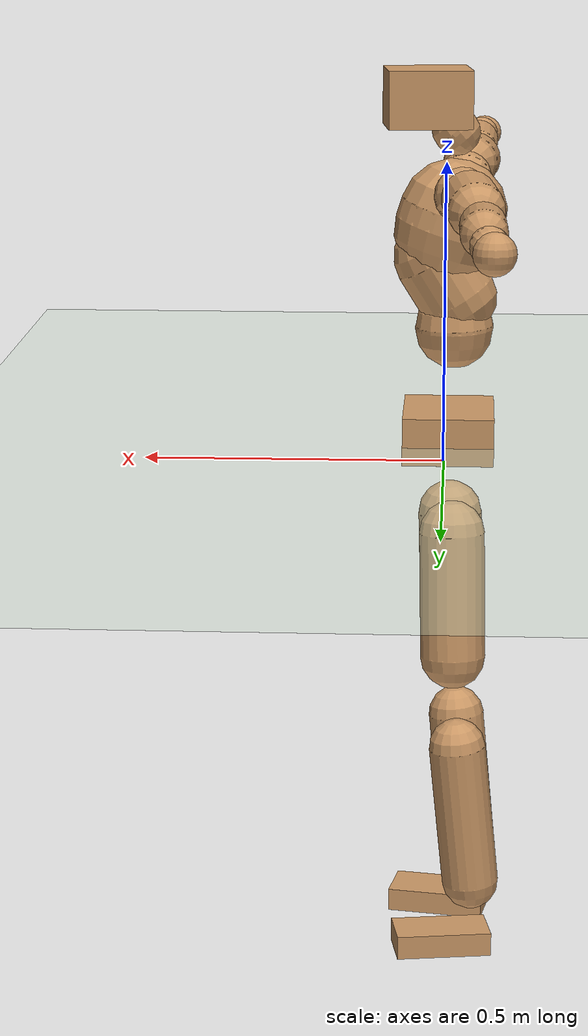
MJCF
<mujoco model="humanoid">
  <compiler coordinate="local" angle="radian"/>
  <default>
    <joint damping="0.0" armature="0.01" stiffness="0.0" limited="true"/>
    <geom conaffinity="1" condim="3" contype="7" margin="0.001" rgba="0.8 0.6 .4 1"/>
  </default>
  <asset>
    <texture type="skybox" builtin="gradient" rgb1=".4 .5 .6" rgb2="0 0 0" width="100" height="100"/>
    <texture builtin="flat" height="1278" mark="cross" markrgb="1 1 1" name="texgeom" random="0.01" rgb1="0.8 0.6 0.4" rgb2="0.8 0.6 0.4" type="cube" width="127"/>
    <texture builtin="checker" height="100" name="texplane" rgb1="0 0 0" rgb2="0.8 0.8 0.8" type="2d" width="100"/>
    <material name="MatPlane" reflectance="0.5" shininess="1" specular="1" texrepeat="60 60" texture="texplane"/>
    <material name="geom" texture="texgeom" texuniform="true"/>
  </asset>
  <worldbody>
    <light cutoff="100" diffuse="1 1 1" dir="-0 0 -1.3" directional="true" exponent="1" pos="0 0 1.3" specular=".1 .1 .1"/>
    <geom conaffinity="1" condim="3" name="floor" pos="0 0 0" rgba="0.8 0.9 0.8 1" size="100 100 .2" type="plane" material="MatPlane"/>
    <body name="Pelvis" pos="-0.0011 -0.2003 0.0205">
      <freejoint name="Pelvis"/>
      <geom type="box" contype="1" conaffinity="1" density="5359.3755" pos="-0.0063 0.0000 -0.0132" size="0.0785 0.0994 0.0409" quat="1.0000 0.0000 0.0000 -0.0017" name="Pelvis"/>
      <body name="L_Hip" pos="-0.0132 0.0644 -0.0924">
        <joint name="L_Hip_x" type="hinge" pos="0 0 0" axis="1 0 0" stiffness="1600" damping="160" armature="0.02" range="-180.0000 180.0000"/>
        <joint name="L_Hip_y" type="hinge" pos="0 0 0" axis="0 1 0" stiffness="1600" damping="160" armature="0.02" range="-180.0000 180.0000"/>
        <joint name="L_Hip_z" type="hinge" pos="0 0 0" axis="0 0 1" stiffness="1600" damping="160" armature="0.02" range="-180.0000 180.0000"/>
        <geom type="capsule" contype="1" conaffinity="1" density="2040.816327" size="0.057" fromto="-0.0018 0.0075 -0.0866 -0.0064 0.0265 -0.3045" name="L_Hip"/>
        <body name="L_Knee" pos="-0.0083 0.034 -0.3911">
          <joint name="L_Knee_x" type="hinge" pos="0 0 0" axis="1 0 0" stiffness="1600" damping="160" armature="0.02" range="-180.0000 180.0000"/>
          <joint name="L_Knee_y" type="hinge" pos="0 0 0" axis="0 1 0" stiffness="1600" damping="160" armature="0.02" range="-180.0000 180.0000"/>
          <joint name="L_Knee_z" type="hinge" pos="0 0 0" axis="0 0 1" stiffness="1600" damping="160" armature="0.02" range="-180.0000 180.0000"/>
          <geom type="capsule" contype="1" conaffinity="1" density="1234.567901" size="0.0499" fromto="-0.0082 -0.0025 -0.0795 -0.0346 -0.0104 -0.3354" name="L_Knee"/>
          <body name="L_Ankle" pos="-0.0428 -0.0128 -0.4149">
            <joint name="L_Ankle_x" type="hinge" pos="0 0 0" axis="1 0 0" stiffness="1600" damping="160" armature="0.02" range="-180.0000 180.0000"/>
            <joint name="L_Ankle_y" type="hinge" pos="0 0 0" axis="0 1 0" stiffness="1600" damping="160" armature="0.02" range="-180.0000 180.0000"/>
            <joint name="L_Ankle_z" type="hinge" pos="0 0 0" axis="0 0 1" stiffness="1600" damping="160" armature="0.02" range="-180.0000 180.0000"/>
            <geom type="box" contype="1" conaffinity="1" density="1000.000014" pos="0.0589 0.0093 -0.0285" size="0.0842 0.0431 0.021" quat="0.9969 0.0000 0.0000 0.0785" name="L_Ankle"/>
            <body name="L_Toe" pos="0.1179 0.0187 -0.0569">
              <joint name="L_Toe_x" type="hinge" pos="0 0 0" axis="1 0 0" stiffness="1000" damping="100" armature="0.02" range="-180.0000 180.0000"/>
              <joint name="L_Toe_y" type="hinge" pos="0 0 0" axis="0 1 0" stiffness="1000" damping="100" armature="0.02" range="-180.0000 180.0000"/>
              <joint name="L_Toe_z" type="hinge" pos="0 0 0" axis="0 0 1" stiffness="1000" damping="100" armature="0.02" range="-180.0000 180.0000"/>
              <geom type="box" contype="1" conaffinity="1" density="8924751.281581" pos="0.0000 0.0000 0.0270" size="0.0009 0.0022 0.001" quat="0.9964 0.0000 0.0000 0.0853" name="L_Toe"/>
            </body>
          </body>
        </body>
      </body>
      <body name="R_Hip" pos="-0.0088 -0.0619 -0.0924">
        <joint name="R_Hip_x" type="hinge" pos="0 0 0" axis="1 0 0" stiffness="1600" damping="160" armature="0.02" range="-180.0000 180.0000"/>
        <joint name="R_Hip_y" type="hinge" pos="0 0 0" axis="0 1 0" stiffness="1600" damping="160" armature="0.02" range="-180.0000 180.0000"/>
        <joint name="R_Hip_z" type="hinge" pos="0 0 0" axis="0 0 1" stiffness="1600" damping="160" armature="0.02" range="-180.0000 180.0000"/>
        <geom type="capsule" contype="1" conaffinity="1" density="2040.816327" size="0.0562" fromto="-0.0023 -0.0085 -0.0858 -0.0085 -0.0306 -0.3099" name="R_Hip"/>
        <body name="R_Knee" pos="-0.0108 -0.0391 -0.3957">
          <joint name="R_Knee_x" type="hinge" pos="0 0 0" axis="1 0 0" stiffness="1600" damping="160" armature="0.02" range="-180.0000 180.0000"/>
          <joint name="R_Knee_y" type="hinge" pos="0 0 0" axis="0 1 0" stiffness="1600" damping="160" armature="0.02" range="-180.0000 180.0000"/>
          <joint name="R_Knee_z" type="hinge" pos="0 0 0" axis="0 0 1" stiffness="1600" damping="160" armature="0.02" range="-180.0000 180.0000"/>
          <geom type="capsule" contype="1" conaffinity="1" density="1234.567901" size="0.0501" fromto="-0.0078 0.0031 -0.0796 -0.0328 0.0130 -0.3342" name="R_Knee"/>
          <body name="R_Ankle" pos="-0.0406 0.0161 -0.4138">
            <joint name="R_Ankle_x" type="hinge" pos="0 0 0" axis="1 0 0" stiffness="1600" damping="160" armature="0.02" range="-180.0000 180.0000"/>
            <joint name="R_Ankle_y" type="hinge" pos="0 0 0" axis="0 1 0" stiffness="1600" damping="160" armature="0.02" range="-180.0000 180.0000"/>
            <joint name="R_Ankle_z" type="hinge" pos="0 0 0" axis="0 0 1" stiffness="1600" damping="160" armature="0.02" range="-180.0000 180.0000"/>
            <geom type="box" contype="1" conaffinity="1" density="1000.000053" pos="0.0605 -0.0104 -0.0240" size="0.0862 0.0454 0.0203" quat="0.9963 0.0000 0.0000 -0.0854" name="R_Ankle"/>
            <body name="R_Toe" pos="0.1209 -0.0209 -0.048">
              <joint name="R_Toe_x" type="hinge" pos="0 0 0" axis="1 0 0" stiffness="1000" damping="100" armature="0.02" range="-180.0000 180.0000"/>
              <joint name="R_Toe_y" type="hinge" pos="0 0 0" axis="0 1 0" stiffness="1000" damping="100" armature="0.02" range="-180.0000 180.0000"/>
              <joint name="R_Toe_z" type="hinge" pos="0 0 0" axis="0 0 1" stiffness="1000" damping="100" armature="0.02" range="-180.0000 180.0000"/>
              <geom type="box" contype="1" conaffinity="1" density="8325906.99632" pos="0.0000 0.0000 0.0255" size="0.0009 0.0023 0.0011" quat="0.9971 0.0000 0.0000 -0.0762" name="R_Toe"/>
            </body>
          </body>
        </body>
      </body>
      <body name="Torso" pos="-0.016 -0.0023 0.1056">
        <joint name="Torso_x" type="hinge" pos="0 0 0" axis="1 0 0" stiffness="2000" damping="200" armature="0.02" range="-180.0000 180.0000"/>
        <joint name="Torso_y" type="hinge" pos="0 0 0" axis="0 1 0" stiffness="2000" damping="200" armature="0.02" range="-180.0000 180.0000"/>
        <joint name="Torso_z" type="hinge" pos="0 0 0" axis="0 0 1" stiffness="2000" damping="200" armature="0.02" range="-180.0000 180.0000"/>
        <geom type="capsule" contype="1" conaffinity="1" density="2040.816327" size="0.0674" fromto="0.0019 0.0015 0.0673 0.0017 0.0014 0.0607" name="Torso"/>
        <body name="Spine" pos="0.0036 0.0029 0.128">
          <joint name="Spine_x" type="hinge" pos="0 0 0" axis="1 0 0" stiffness="2000" damping="200" armature="0.02" range="-180.0000 180.0000"/>
          <joint name="Spine_y" type="hinge" pos="0 0 0" axis="0 1 0" stiffness="2000" damping="200" armature="0.02" range="-180.0000 180.0000"/>
          <joint name="Spine_z" type="hinge" pos="0 0 0" axis="0 0 1" stiffness="2000" damping="200" armature="0.02" range="-180.0000 180.0000"/>
          <geom type="capsule" contype="1" conaffinity="1" density="2040.816327" size="0.0688" fromto="0.0362 0.0041 0.0584 -0.0065 -0.0007 -0.0106" name="Spine"/>
          <body name="Chest" pos="0.0296 0.0033 0.0479">
            <joint name="Chest_x" type="hinge" pos="0 0 0" axis="1 0 0" stiffness="2000" damping="200" armature="0.02" range="-180.0000 180.0000"/>
            <joint name="Chest_y" type="hinge" pos="0 0 0" axis="0 1 0" stiffness="2000" damping="200" armature="0.02" range="-180.0000 180.0000"/>
            <joint name="Chest_z" type="hinge" pos="0 0 0" axis="0 0 1" stiffness="2000" damping="200" armature="0.02" range="-180.0000 180.0000"/>
            <geom type="capsule" contype="1" conaffinity="1" density="2040.816327" size="0.0922" fromto="-0.0275 -0.0004 0.0880 -0.0174 -0.0003 0.0556" name="Chest"/>
            <body name="Neck" pos="-0.0533 -0.0007 0.2">
              <joint name="Neck_x" type="hinge" pos="0 0 0" axis="1 0 0" stiffness="1000" damping="100" armature="0.02" range="-180.0000 180.0000"/>
              <joint name="Neck_y" type="hinge" pos="0 0 0" axis="0 1 0" stiffness="1000" damping="100" armature="0.02" range="-180.0000 180.0000"/>
              <joint name="Neck_z" type="hinge" pos="0 0 0" axis="0 0 1" stiffness="1000" damping="100" armature="0.02" range="-180.0000 180.0000"/>
              <geom type="capsule" contype="1" conaffinity="1" density="1000" size="0.0397" fromto="0.0259 0.0022 0.0299 0.0213 0.0018 0.0246" name="Neck"/>
              <body name="Head" pos="0.0472 0.004 0.0546">
                <joint name="Head_x" type="hinge" pos="0 0 0" axis="1 0 0" stiffness="1000" damping="100" armature="0.02" range="-180.0000 180.0000"/>
                <joint name="Head_y" type="hinge" pos="0 0 0" axis="0 1 0" stiffness="1000" damping="100" armature="0.02" range="-180.0000 180.0000"/>
                <joint name="Head_z" type="hinge" pos="0 0 0" axis="0 0 1" stiffness="1000" damping="100" armature="0.02" range="-180.0000 180.0000"/>
                <geom type="box" contype="1" conaffinity="1" density="2249.999998" pos="0.0246 0.0030 0.0283" size="0.0711 0.0564 0.0489" quat="0.9982 0.0000 0.0000 0.0606" name="Head"/>
              </body>
            </body>
            <body name="L_Thorax" pos="-0.0391 0.0724 0.1162">
              <joint name="L_Thorax_x" type="hinge" pos="0 0 0" axis="1 0 0" stiffness="1000" damping="100" armature="0.02" range="-180.0000 180.0000"/>
              <joint name="L_Thorax_y" type="hinge" pos="0 0 0" axis="0 1 0" stiffness="1000" damping="100" armature="0.02" range="-180.0000 180.0000"/>
              <joint name="L_Thorax_z" type="hinge" pos="0 0 0" axis="0 0 1" stiffness="1000" damping="100" armature="0.02" range="-180.0000 180.0000"/>
              <geom type="capsule" contype="1" conaffinity="1" density="1000" size="0.0473" fromto="-0.0032 0.0439 0.0174 -0.0025 0.0341 0.0135" name="L_Thorax"/>
              <body name="L_Shoulder" pos="-0.0058 0.078 0.0309">
                <joint name="L_Shoulder_x" type="hinge" pos="0 0 0" axis="1 0 0" stiffness="1000" damping="100" armature="0.02" range="-720.0000 720.0000"/>
                <joint name="L_Shoulder_y" type="hinge" pos="0 0 0" axis="0 1 0" stiffness="1000" damping="100" armature="0.02" range="-720.0000 720.0000"/>
                <joint name="L_Shoulder_z" type="hinge" pos="0 0 0" axis="0 0 1" stiffness="1000" damping="100" armature="0.02" range="-720.0000 720.0000"/>
                <geom type="capsule" contype="1" conaffinity="1" density="1000" size="0.0463" fromto="-0.0081 0.0758 -0.0034 -0.0198 0.1861 -0.0083" name="L_Shoulder"/>
                <body name="L_Elbow" pos="-0.0279 0.2619 -0.0116">
                  <joint name="L_Elbow_x" type="hinge" pos="0 0 0" axis="1 0 0" stiffness="1000" damping="100" armature="0.02" range="-720.0000 720.0000"/>
                  <joint name="L_Elbow_y" type="hinge" pos="0 0 0" axis="0 1 0" stiffness="1000" damping="100" armature="0.02" range="-720.0000 720.0000"/>
                  <joint name="L_Elbow_z" type="hinge" pos="0 0 0" axis="0 0 1" stiffness="1000" damping="100" armature="0.02" range="-720.0000 720.0000"/>
                  <geom type="capsule" contype="1" conaffinity="1" density="1000" size="0.0366" fromto="-0.0005 0.0665 0.0029 -0.0013 0.1806 0.0078" name="L_Elbow"/>
                  <body name="L_Wrist" pos="-0.0018 0.2471 0.0107">
                    <joint name="L_Wrist_x" type="hinge" pos="0 0 0" axis="1 0 0" stiffness="600" damping="60" armature="0.02" range="-180.0000 180.0000"/>
                    <joint name="L_Wrist_y" type="hinge" pos="0 0 0" axis="0 1 0" stiffness="600" damping="60" armature="0.02" range="-180.0000 180.0000"/>
                    <joint name="L_Wrist_z" type="hinge" pos="0 0 0" axis="0 0 1" stiffness="600" damping="60" armature="0.02" range="-180.0000 180.0000"/>
                    <geom type="capsule" contype="1" conaffinity="1" density="1000" size="0.03" fromto="-0.0067 0.0393 -0.0047 -0.0071 0.0413 -0.0049" name="L_Wrist"/>
                    <body name="L_Hand" pos="-0.0138 0.0806 -0.0097">
                      <joint name="L_Hand_x" type="hinge" pos="0 0 0" axis="1 0 0" stiffness="600" damping="60" armature="0.02" range="-180.0000 180.0000"/>
                      <joint name="L_Hand_y" type="hinge" pos="0 0 0" axis="0 1 0" stiffness="600" damping="60" armature="0.02" range="-180.0000 180.0000"/>
                      <joint name="L_Hand_z" type="hinge" pos="0 0 0" axis="0 0 1" stiffness="600" damping="60" armature="0.02" range="-180.0000 180.0000"/>
                      <geom type="sphere" contype="1" conaffinity="1" density="1000" size="0.0324" pos="0.0000 0.0000 0.0000" name="L_Hand"/>
                    </body>
                  </body>
                </body>
              </body>
            </body>
            <body name="R_Thorax" pos="-0.0425 -0.0737 0.1145">
              <joint name="R_Thorax_x" type="hinge" pos="0 0 0" axis="1 0 0" stiffness="1000" damping="100" armature="0.02" range="-180.0000 180.0000"/>
              <joint name="R_Thorax_y" type="hinge" pos="0 0 0" axis="0 1 0" stiffness="1000" damping="100" armature="0.02" range="-180.0000 180.0000"/>
              <joint name="R_Thorax_z" type="hinge" pos="0 0 0" axis="0 0 1" stiffness="1000" damping="100" armature="0.02" range="-180.0000 180.0000"/>
              <geom type="capsule" contype="1" conaffinity="1" density="1000" size="0.0471" fromto="-0.0039 -0.0438 0.0168 -0.0036 -0.0398 0.0153" name="R_Thorax"/>
              <body name="R_Shoulder" pos="-0.0075 -0.0836 0.0321">
                <joint name="R_Shoulder_x" type="hinge" pos="0 0 0" axis="1 0 0" stiffness="1000" damping="100" armature="0.02" range="-720.0000 720.0000"/>
                <joint name="R_Shoulder_y" type="hinge" pos="0 0 0" axis="0 1 0" stiffness="1000" damping="100" armature="0.02" range="-720.0000 720.0000"/>
                <joint name="R_Shoulder_z" type="hinge" pos="0 0 0" axis="0 0 1" stiffness="1000" damping="100" armature="0.02" range="-720.0000 720.0000"/>
                <geom type="capsule" contype="1" conaffinity="1" density="1000" size="0.0485" fromto="-0.0054 -0.0782 -0.0042 -0.0122 -0.1773 -0.0096" name="R_Shoulder"/>
                <body name="R_Elbow" pos="-0.0176 -0.2555 -0.0139">
                  <joint name="R_Elbow_x" type="hinge" pos="0 0 0" axis="1 0 0" stiffness="1000" damping="100" armature="0.02" range="-720.0000 720.0000"/>
                  <joint name="R_Elbow_y" type="hinge" pos="0 0 0" axis="0 1 0" stiffness="1000" damping="100" armature="0.02" range="-720.0000 720.0000"/>
                  <joint name="R_Elbow_z" type="hinge" pos="0 0 0" axis="0 0 1" stiffness="1000" damping="100" armature="0.02" range="-720.0000 720.0000"/>
                  <geom type="capsule" contype="1" conaffinity="1" density="1000" size="0.0372" fromto="-0.0015 -0.0671 0.0027 -0.0044 -0.1916 0.0078" name="R_Elbow"/>
                  <body name="R_Wrist" pos="-0.006 -0.2587 0.0105">
                    <joint name="R_Wrist_x" type="hinge" pos="0 0 0" axis="1 0 0" stiffness="600" damping="60" armature="0.02" range="-180.0000 180.0000"/>
                    <joint name="R_Wrist_y" type="hinge" pos="0 0 0" axis="0 1 0" stiffness="600" damping="60" armature="0.02" range="-180.0000 180.0000"/>
                    <joint name="R_Wrist_z" type="hinge" pos="0 0 0" axis="0 0 1" stiffness="600" damping="60" armature="0.02" range="-180.0000 180.0000"/>
                    <geom type="capsule" contype="1" conaffinity="1" density="1000" size="0.0312" fromto="-0.0053 -0.0404 -0.0036 -0.0056 -0.0423 -0.0037" name="R_Wrist"/>
                    <body name="R_Hand" pos="-0.0109 -0.0827 -0.0073">
                      <joint name="R_Hand_x" type="hinge" pos="0 0 0" axis="1 0 0" stiffness="600" damping="60" armature="0.02" range="-180.0000 180.0000"/>
                      <joint name="R_Hand_y" type="hinge" pos="0 0 0" axis="0 1 0" stiffness="600" damping="60" armature="0.02" range="-180.0000 180.0000"/>
                      <joint name="R_Hand_z" type="hinge" pos="0 0 0" axis="0 0 1" stiffness="600" damping="60" armature="0.02" range="-180.0000 180.0000"/>
                      <geom type="sphere" contype="1" conaffinity="1" density="1000" size="0.0331" pos="0.0000 0.0000 0.0000" name="R_Hand"/>
                    </body>
                  </body>
                </body>
              </body>
            </body>
          </body>
        </body>
      </body>
    </body>
  </worldbody>
  <actuator>
    <motor name="L_Hip_x" joint="L_Hip_x" gear="500"/>
    <motor name="L_Hip_y" joint="L_Hip_y" gear="500"/>
    <motor name="L_Hip_z" joint="L_Hip_z" gear="500"/>
    <motor name="L_Knee_x" joint="L_Knee_x" gear="500"/>
    <motor name="L_Knee_y" joint="L_Knee_y" gear="500"/>
    <motor name="L_Knee_z" joint="L_Knee_z" gear="500"/>
    <motor name="L_Ankle_x" joint="L_Ankle_x" gear="500"/>
    <motor name="L_Ankle_y" joint="L_Ankle_y" gear="500"/>
    <motor name="L_Ankle_z" joint="L_Ankle_z" gear="500"/>
    <motor name="L_Toe_x" joint="L_Toe_x" gear="500"/>
    <motor name="L_Toe_y" joint="L_Toe_y" gear="500"/>
    <motor name="L_Toe_z" joint="L_Toe_z" gear="500"/>
    <motor name="R_Hip_x" joint="R_Hip_x" gear="500"/>
    <motor name="R_Hip_y" joint="R_Hip_y" gear="500"/>
    <motor name="R_Hip_z" joint="R_Hip_z" gear="500"/>
    <motor name="R_Knee_x" joint="R_Knee_x" gear="500"/>
    <motor name="R_Knee_y" joint="R_Knee_y" gear="500"/>
    <motor name="R_Knee_z" joint="R_Knee_z" gear="500"/>
    <motor name="R_Ankle_x" joint="R_Ankle_x" gear="500"/>
    <motor name="R_Ankle_y" joint="R_Ankle_y" gear="500"/>
    <motor name="R_Ankle_z" joint="R_Ankle_z" gear="500"/>
    <motor name="R_Toe_x" joint="R_Toe_x" gear="500"/>
    <motor name="R_Toe_y" joint="R_Toe_y" gear="500"/>
    <motor name="R_Toe_z" joint="R_Toe_z" gear="500"/>
    <motor name="Torso_x" joint="Torso_x" gear="500"/>
    <motor name="Torso_y" joint="Torso_y" gear="500"/>
    <motor name="Torso_z" joint="Torso_z" gear="500"/>
    <motor name="Spine_x" joint="Spine_x" gear="500"/>
    <motor name="Spine_y" joint="Spine_y" gear="500"/>
    <motor name="Spine_z" joint="Spine_z" gear="500"/>
    <motor name="Chest_x" joint="Chest_x" gear="500"/>
    <motor name="Chest_y" joint="Chest_y" gear="500"/>
    <motor name="Chest_z" joint="Chest_z" gear="500"/>
    <motor name="Neck_x" joint="Neck_x" gear="500"/>
    <motor name="Neck_y" joint="Neck_y" gear="500"/>
    <motor name="Neck_z" joint="Neck_z" gear="500"/>
    <motor name="Head_x" joint="Head_x" gear="500"/>
    <motor name="Head_y" joint="Head_y" gear="500"/>
    <motor name="Head_z" joint="Head_z" gear="500"/>
    <motor name="L_Thorax_x" joint="L_Thorax_x" gear="500"/>
    <motor name="L_Thorax_y" joint="L_Thorax_y" gear="500"/>
    <motor name="L_Thorax_z" joint="L_Thorax_z" gear="500"/>
    <motor name="L_Shoulder_x" joint="L_Shoulder_x" gear="500"/>
    <motor name="L_Shoulder_y" joint="L_Shoulder_y" gear="500"/>
    <motor name="L_Shoulder_z" joint="L_Shoulder_z" gear="500"/>
    <motor name="L_Elbow_x" joint="L_Elbow_x" gear="500"/>
    <motor name="L_Elbow_y" joint="L_Elbow_y" gear="500"/>
    <motor name="L_Elbow_z" joint="L_Elbow_z" gear="500"/>
    <motor name="L_Wrist_x" joint="L_Wrist_x" gear="500"/>
    <motor name="L_Wrist_y" joint="L_Wrist_y" gear="500"/>
    <motor name="L_Wrist_z" joint="L_Wrist_z" gear="500"/>
    <motor name="L_Hand_x" joint="L_Hand_x" gear="500"/>
    <motor name="L_Hand_y" joint="L_Hand_y" gear="500"/>
    <motor name="L_Hand_z" joint="L_Hand_z" gear="500"/>
    <motor name="R_Thorax_x" joint="R_Thorax_x" gear="500"/>
    <motor name="R_Thorax_y" joint="R_Thorax_y" gear="500"/>
    <motor name="R_Thorax_z" joint="R_Thorax_z" gear="500"/>
    <motor name="R_Shoulder_x" joint="R_Shoulder_x" gear="500"/>
    <motor name="R_Shoulder_y" joint="R_Shoulder_y" gear="500"/>
    <motor name="R_Shoulder_z" joint="R_Shoulder_z" gear="500"/>
    <motor name="R_Elbow_x" joint="R_Elbow_x" gear="500"/>
    <motor name="R_Elbow_y" joint="R_Elbow_y" gear="500"/>
    <motor name="R_Elbow_z" joint="R_Elbow_z" gear="500"/>
    <motor name="R_Wrist_x" joint="R_Wrist_x" gear="500"/>
    <motor name="R_Wrist_y" joint="R_Wrist_y" gear="500"/>
    <motor name="R_Wrist_z" joint="R_Wrist_z" gear="500"/>
    <motor name="R_Hand_x" joint="R_Hand_x" gear="500"/>
    <motor name="R_Hand_y" joint="R_Hand_y" gear="500"/>
    <motor name="R_Hand_z" joint="R_Hand_z" gear="500"/>
  </actuator>
  <contact>
    <exclude body1="Torso" body2="Chest"/>
    <exclude body1="Head" body2="Chest"/>
    <exclude body1="R_Knee" body2="R_Toe"/>
    <exclude body1="R_Knee" body2="L_Ankle"/>
    <exclude body1="R_Knee" body2="L_Toe"/>
    <exclude body1="L_Knee" body2="L_Toe"/>
    <exclude body1="L_Knee" body2="R_Ankle"/>
    <exclude body1="L_Knee" body2="R_Toe"/>
    <exclude body1="L_Shoulder" body2="Chest"/>
    <exclude body1="R_Shoulder" body2="Chest"/>
  </contact>
  <sensor/>
  <size njmax="700" nconmax="700"/>
</mujoco>
